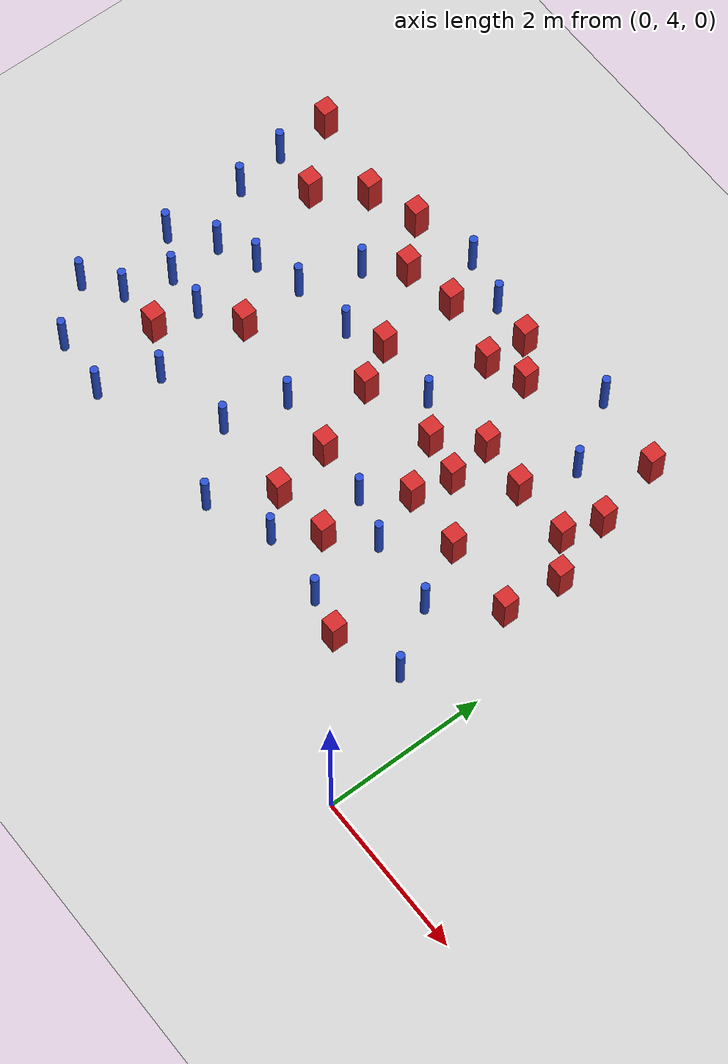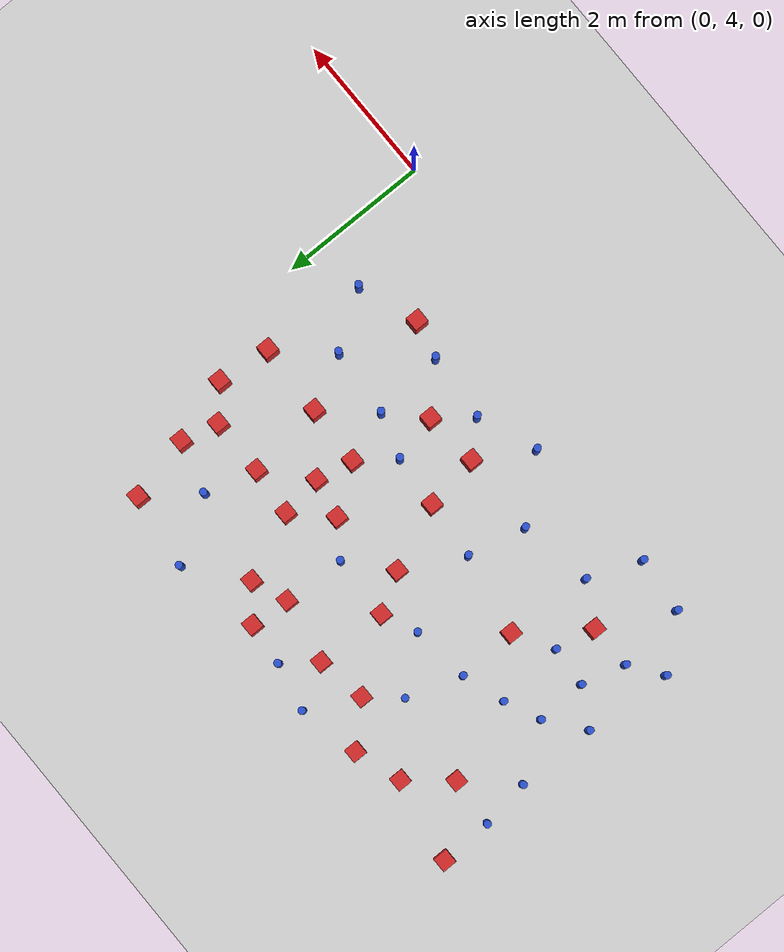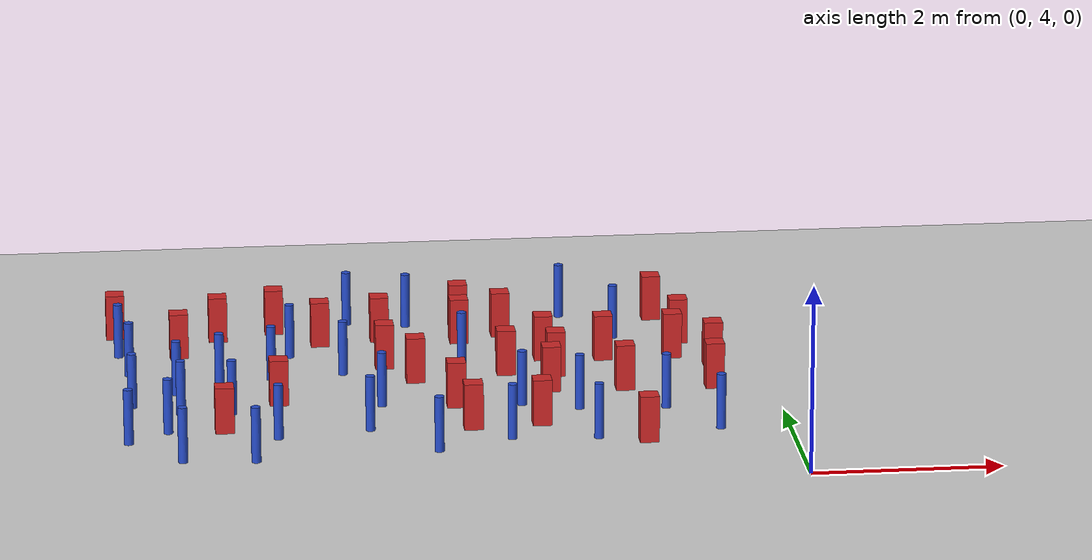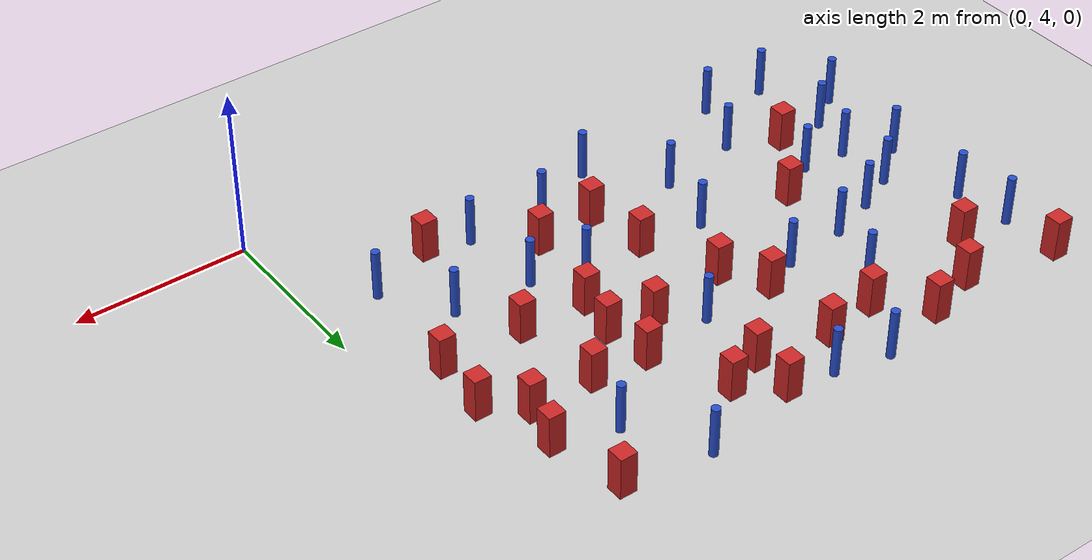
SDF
<sdf version="1.6">
 <world name="default">
  <model name="ground_plane">
   <static>1</static>
   <link name="link">
    <collision name="collision">
     <geometry><plane><normal>0 0 1</normal><size>100 100</size></plane></geometry>
     <surface><friction><ode><mu>100</mu><mu2>50</mu2></ode></friction></surface>
    </collision>
    <visual name="visual">
     <cast_shadows>0</cast_shadows>
     <geometry><plane><normal>0 0 1</normal><size>100 100</size></plane></geometry>
     <material>
      <ambient>1.0 1.0 1.0 1.0</ambient>
      <diffuse>0.8 0.8 0.8 1.0</diffuse>
      <specular>0.01 0.01 0.01 1.000000</specular>
     </material>
    </visual>
   </link>
  </model>
  <model name="square_post_obstacle2">
   <static>true</static>
   <pose>-5.19528177853 9.21006002513 8.22691968438e-08 7.22125133819e-06 -7.54495500217e-07 2.29674213826e-05</pose>
   <link name="link">
    <pose>0 0 0.25 0 -0 0</pose>
    <inertial>
     <mass>100</mass>
     <inertia>
      <ixx>0.166667</ixx>
      <ixy>0</ixy>
      <ixz>0</ixz>
      <iyy>0.166667</iyy>
      <iyz>0</iyz>
      <izz>0.166667</izz>
     </inertia>
    </inertial>
    <collision name="collision"><geometry><box><size>.2 .2 .5</size></box></geometry></collision>
    <visual name="visual">
     <geometry><box><size>.2 .2 .5</size></box></geometry>
     <material>
      <script><name>Gazebo/Red</name><uri>file://media/materials/scripts/gazebo.material</uri></script>
     </material>
    </visual>
   </link>
  </model>
  <model name="square_post_obstacle3">
   <static>true</static>
   <pose>-1.02345209858 9.29119812651 8.22691968438e-08 7.22125133819e-06 -7.54495500217e-07 2.29674213826e-05</pose>
   <link name="link">
    <pose>0 0 0.25 0 -0 0</pose>
    <inertial>
     <mass>100</mass>
     <inertia>
      <ixx>0.166667</ixx>
      <ixy>0</ixy>
      <ixz>0</ixz>
      <iyy>0.166667</iyy>
      <iyz>0</iyz>
      <izz>0.166667</izz>
     </inertia>
    </inertial>
    <collision name="collision"><geometry><box><size>.2 .2 .5</size></box></geometry></collision>
    <visual name="visual">
     <geometry><box><size>.2 .2 .5</size></box></geometry>
     <material>
      <script><name>Gazebo/Red</name><uri>file://media/materials/scripts/gazebo.material</uri></script>
     </material>
    </visual>
   </link>
  </model>
  <model name="pole_obstacle5">
   <static>true</static>
   <pose>-4.5406717764 7.67600084442 2.88873142074e-08 -9.90536690842e-09 4.60219948965e-07 -1.20965994976e-07</pose>
   <link name="link">
    <pose>0 0 0.3 0 -0 0</pose>
    <inertial>
     <mass>1</mass>
     <inertia><ixx>0.145833</ixx><ixy>0</ixy><ixz>0</ixz><iyy>0.145833</iyy><iyz>0</iyz><izz>0.125</izz></inertia>
    </inertial>
    <collision name="collision">
     <geometry><cylinder><radius>0.05</radius><length>.6</length></cylinder></geometry>
    </collision>
    <visual name="visual">
     <geometry><cylinder><radius>0.05</radius><length>.6</length></cylinder></geometry>
     <material>
      <script><name>Gazebo/Blue</name><uri>file://media/materials/scripts/gazebo.material</uri></script>
     </material>
    </visual>
   </link>
  </model>
  <model name="pole_obstacle8">
   <static>true</static>
   <pose>-6.38018953515 5.01108412161 2.88873142074e-08 -9.90536690842e-09 4.60219948965e-07 -1.20965994976e-07</pose>
   <link name="link">
    <pose>0 0 0.3 0 -0 0</pose>
    <inertial>
     <mass>1</mass>
     <inertia><ixx>0.145833</ixx><ixy>0</ixy><ixz>0</ixz><iyy>0.145833</iyy><iyz>0</iyz><izz>0.125</izz></inertia>
    </inertial>
    <collision name="collision">
     <geometry><cylinder><radius>0.05</radius><length>.6</length></cylinder></geometry>
    </collision>
    <visual name="visual">
     <geometry><cylinder><radius>0.05</radius><length>.6</length></cylinder></geometry>
     <material>
      <script><name>Gazebo/Blue</name><uri>file://media/materials/scripts/gazebo.material</uri></script>
     </material>
    </visual>
   </link>
  </model>
  <model name="square_post_obstacle14">
   <static>true</static>
   <pose>-2.37132577431 6.94454927565 8.22691968438e-08 7.2212513382e-06 -7.54495500217e-07 2.29674213826e-05</pose>
   <link name="link">
    <pose>0 0 0.25 0 -0 0</pose>
    <inertial>
     <mass>100</mass>
     <inertia>
      <ixx>0.166667</ixx>
      <ixy>0</ixy>
      <ixz>0</ixz>
      <iyy>0.166667</iyy>
      <iyz>0</iyz>
      <izz>0.166667</izz>
     </inertia>
    </inertial>
    <collision name="collision"><geometry><box><size>.2 .2 .5</size></box></geometry></collision>
    <visual name="visual">
     <geometry><box><size>.2 .2 .5</size></box></geometry>
     <material>
      <script><name>Gazebo/Red</name><uri>file://media/materials/scripts/gazebo.material</uri></script>
     </material>
    </visual>
   </link>
  </model>
  <model name="square_post_obstacle16">
   <static>true</static>
   <pose>-6.93241014558 9.20835231173 8.22691968438e-08 7.22125133819e-06 -7.54495500217e-07 2.29674213826e-05</pose>
   <link name="link">
    <pose>0 0 0.25 0 -0 0</pose>
    <inertial>
     <mass>100</mass>
     <inertia>
      <ixx>0.166667</ixx>
      <ixy>0</ixy>
      <ixz>0</ixz>
      <iyy>0.166667</iyy>
      <iyz>0</iyz>
      <izz>0.166667</izz>
     </inertia>
    </inertial>
    <collision name="collision"><geometry><box><size>.2 .2 .5</size></box></geometry></collision>
    <visual name="visual">
     <geometry><box><size>.2 .2 .5</size></box></geometry>
     <material>
      <script><name>Gazebo/Red</name><uri>file://media/materials/scripts/gazebo.material</uri></script>
     </material>
    </visual>
   </link>
  </model>
  <model name="pole_obstacle9">
   <static>true</static>
   <pose>-3.72507891736 5.07874219042 2.88873142074e-08 -9.90536689859e-09 4.60219948989e-07 -1.20965994961e-07</pose>
   <link name="link">
    <pose>0 0 0.3 0 -0 0</pose>
    <inertial>
     <mass>1</mass>
     <inertia><ixx>0.145833</ixx><ixy>0</ixy><ixz>0</ixz><iyy>0.145833</iyy><iyz>0</iyz><izz>0.125</izz></inertia>
    </inertial>
    <collision name="collision">
     <geometry><cylinder><radius>0.05</radius><length>.6</length></cylinder></geometry>
    </collision>
    <visual name="visual">
     <geometry><cylinder><radius>0.05</radius><length>.6</length></cylinder></geometry>
     <material>
      <script><name>Gazebo/Blue</name><uri>file://media/materials/scripts/gazebo.material</uri></script>
     </material>
    </visual>
   </link>
  </model>
  <model name="square_post_obstacle19">
   <static>true</static>
   <pose>-3.30935946386 5.7919567537 8.22691968438e-08 7.2212513382e-06 -7.54495500217e-07 2.29674213826e-05</pose>
   <link name="link">
    <pose>0 0 0.25 0 -0 0</pose>
    <inertial>
     <mass>100</mass>
     <inertia>
      <ixx>0.166667</ixx>
      <ixy>0</ixy>
      <ixz>0</ixz>
      <iyy>0.166667</iyy>
      <iyz>0</iyz>
      <izz>0.166667</izz>
     </inertia>
    </inertial>
    <collision name="collision"><geometry><box><size>.2 .2 .5</size></box></geometry></collision>
    <visual name="visual">
     <geometry><box><size>.2 .2 .5</size></box></geometry>
     <material>
      <script><name>Gazebo/Red</name><uri>file://media/materials/scripts/gazebo.material</uri></script>
     </material>
    </visual>
   </link>
  </model>
  <model name="pole_obstacle11">
   <static>true</static>
   <pose>-3.24421056813 7.85350295179 2.88873142074e-08 -9.90536689859e-09 4.60219948989e-07 -1.20965994961e-07</pose>
   <link name="link">
    <pose>0 0 0.3 0 -0 0</pose>
    <inertial>
     <mass>1</mass>
     <inertia><ixx>0.145833</ixx><ixy>0</ixy><ixz>0</ixz><iyy>0.145833</iyy><iyz>0</iyz><izz>0.125</izz></inertia>
    </inertial>
    <collision name="collision">
     <geometry><cylinder><radius>0.05</radius><length>.6</length></cylinder></geometry>
    </collision>
    <visual name="visual">
     <geometry><cylinder><radius>0.05</radius><length>.6</length></cylinder></geometry>
     <material>
      <script><name>Gazebo/Blue</name><uri>file://media/materials/scripts/gazebo.material</uri></script>
     </material>
    </visual>
   </link>
  </model>
  <model name="square_post_obstacle27">
   <static>true</static>
   <pose>-5.90386193936 5.9466558869 8.22691968438e-08 7.2212513382e-06 -7.54495500217e-07 2.29674213826e-05</pose>
   <link name="link">
    <pose>0 0 0.25 0 -0 0</pose>
    <inertial>
     <mass>100</mass>
     <inertia>
      <ixx>0.166667</ixx>
      <ixy>0</ixy>
      <ixz>0</ixz>
      <iyy>0.166667</iyy>
      <iyz>0</iyz>
      <izz>0.166667</izz>
     </inertia>
    </inertial>
    <collision name="collision"><geometry><box><size>.2 .2 .5</size></box></geometry></collision>
    <visual name="visual">
     <geometry><box><size>.2 .2 .5</size></box></geometry>
     <material>
      <script><name>Gazebo/Red</name><uri>file://media/materials/scripts/gazebo.material</uri></script>
     </material>
    </visual>
   </link>
  </model>
  <model name="pole_obstacle19">
   <static>true</static>
   <pose>-5.6300147762 4.94023833615 2.88873142074e-08 -9.90536690842e-09 4.60219948965e-07 -1.20965994976e-07</pose>
   <link name="link">
    <pose>0 0 0.3 0 -0 0</pose>
    <inertial>
     <mass>1</mass>
     <inertia><ixx>0.145833</ixx><ixy>0</ixy><ixz>0</ixz><iyy>0.145833</iyy><iyz>0</iyz><izz>0.125</izz></inertia>
    </inertial>
    <collision name="collision">
     <geometry><cylinder><radius>0.05</radius><length>.6</length></cylinder></geometry>
    </collision>
    <visual name="visual">
     <geometry><cylinder><radius>0.05</radius><length>.6</length></cylinder></geometry>
     <material>
      <script><name>Gazebo/Blue</name><uri>file://media/materials/scripts/gazebo.material</uri></script>
     </material>
    </visual>
   </link>
  </model>
  <model name="pole_obstacle21">
   <static>true</static>
   <pose>-0.732135297291 5.49770974981 2.88873142074e-08 -9.90536689661e-09 4.60219948993e-07 -1.20965994957e-07</pose>
   <link name="link">
    <pose>0 0 0.3 0 -0 0</pose>
    <inertial>
     <mass>1</mass>
     <inertia><ixx>0.145833</ixx><ixy>0</ixy><ixz>0</ixz><iyy>0.145833</iyy><iyz>0</iyz><izz>0.125</izz></inertia>
    </inertial>
    <collision name="collision">
     <geometry><cylinder><radius>0.05</radius><length>.6</length></cylinder></geometry>
    </collision>
    <visual name="visual">
     <geometry><cylinder><radius>0.05</radius><length>.6</length></cylinder></geometry>
     <material>
      <script><name>Gazebo/Blue</name><uri>file://media/materials/scripts/gazebo.material</uri></script>
     </material>
    </visual>
   </link>
  </model>
  <model name="pole_obstacle23">
   <static>true</static>
   <pose>-1.22024010586 6.22082861621 2.88873142074e-08 -9.90536689852e-09 4.60219948989e-07 -1.2096599496e-07</pose>
   <link name="link">
    <pose>0 0 0.3 0 -0 0</pose>
    <inertial>
     <mass>1</mass>
     <inertia><ixx>0.145833</ixx><ixy>0</ixy><ixz>0</ixz><iyy>0.145833</iyy><iyz>0</iyz><izz>0.125</izz></inertia>
    </inertial>
    <collision name="collision">
     <geometry><cylinder><radius>0.05</radius><length>.6</length></cylinder></geometry>
    </collision>
    <visual name="visual">
     <geometry><cylinder><radius>0.05</radius><length>.6</length></cylinder></geometry>
     <material>
      <script><name>Gazebo/Blue</name><uri>file://media/materials/scripts/gazebo.material</uri></script>
     </material>
    </visual>
   </link>
  </model>
  <model name="pole_obstacle36">
   <static>true</static>
   <pose>-5.7958700446 6.48162604682 2.88873142074e-08 -9.90536690842e-09 4.60219948965e-07 -1.20965994976e-07</pose>
   <link name="link">
    <pose>0 0 0.3 0 -0 0</pose>
    <inertial>
     <mass>1</mass>
     <inertia><ixx>0.145833</ixx><ixy>0</ixy><ixz>0</ixz><iyy>0.145833</iyy><iyz>0</iyz><izz>0.125</izz></inertia>
    </inertial>
    <collision name="collision">
     <geometry><cylinder><radius>0.05</radius><length>.6</length></cylinder></geometry>
    </collision>
    <visual name="visual">
     <geometry><cylinder><radius>0.05</radius><length>.6</length></cylinder></geometry>
     <material>
      <script><name>Gazebo/Blue</name><uri>file://media/materials/scripts/gazebo.material</uri></script>
     </material>
    </visual>
   </link>
  </model>
  <model name="square_post_obstacle37">
   <static>true</static>
   <pose>-2.7369388091 8.86184425948 8.22691968438e-08 7.22125133819e-06 -7.54495500217e-07 2.29674213826e-05</pose>
   <link name="link">
    <pose>0 0 0.25 0 -0 0</pose>
    <inertial>
     <mass>100</mass>
     <inertia>
      <ixx>0.166667</ixx>
      <ixy>0</ixy>
      <ixz>0</ixz>
      <iyy>0.166667</iyy>
      <iyz>0</iyz>
      <izz>0.166667</izz>
     </inertia>
    </inertial>
    <collision name="collision"><geometry><box><size>.2 .2 .5</size></box></geometry></collision>
    <visual name="visual">
     <geometry><box><size>.2 .2 .5</size></box></geometry>
     <material>
      <script><name>Gazebo/Red</name><uri>file://media/materials/scripts/gazebo.material</uri></script>
     </material>
    </visual>
   </link>
  </model>
  <model name="square_post_obstacle40">
   <static>true</static>
   <pose>-3.42338752675 6.52288904968 8.22691968438e-08 7.2212513382e-06 -7.54495500217e-07 2.29674213826e-05</pose>
   <link name="link">
    <pose>0 0 0.25 0 -0 0</pose>
    <inertial>
     <mass>100</mass>
     <inertia>
      <ixx>0.166667</ixx>
      <ixy>0</ixy>
      <ixz>0</ixz>
      <iyy>0.166667</iyy>
      <iyz>0</iyz>
      <izz>0.166667</izz>
     </inertia>
    </inertial>
    <collision name="collision"><geometry><box><size>.2 .2 .5</size></box></geometry></collision>
    <visual name="visual">
     <geometry><box><size>.2 .2 .5</size></box></geometry>
     <material>
      <script><name>Gazebo/Red</name><uri>file://media/materials/scripts/gazebo.material</uri></script>
     </material>
    </visual>
   </link>
  </model>
  <model name="pole_obstacle44">
   <static>true</static>
   <pose>-2.72752883314 6.47119800736 2.88873142074e-08 -9.90536689859e-09 4.60219948989e-07 -1.20965994961e-07</pose>
   <link name="link">
    <pose>0 0 0.3 0 -0 0</pose>
    <inertial>
     <mass>1</mass>
     <inertia><ixx>0.145833</ixx><ixy>0</ixy><ixz>0</ixz><iyy>0.145833</iyy><iyz>0</iyz><izz>0.125</izz></inertia>
    </inertial>
    <collision name="collision">
     <geometry><cylinder><radius>0.05</radius><length>.6</length></cylinder></geometry>
    </collision>
    <visual name="visual">
     <geometry><cylinder><radius>0.05</radius><length>.6</length></cylinder></geometry>
     <material>
      <script><name>Gazebo/Blue</name><uri>file://media/materials/scripts/gazebo.material</uri></script>
     </material>
    </visual>
   </link>
  </model>
  <model name="pole_obstacle45">
   <static>true</static>
   <pose>-6.83371068007 6.80392389619 2.88873142074e-08 -9.90536690842e-09 4.60219948965e-07 -1.20965994976e-07</pose>
   <link name="link">
    <pose>0 0 0.3 0 -0 0</pose>
    <inertial>
     <mass>1</mass>
     <inertia><ixx>0.145833</ixx><ixy>0</ixy><ixz>0</ixz><iyy>0.145833</iyy><iyz>0</iyz><izz>0.125</izz></inertia>
    </inertial>
    <collision name="collision">
     <geometry><cylinder><radius>0.05</radius><length>.6</length></cylinder></geometry>
    </collision>
    <visual name="visual">
     <geometry><cylinder><radius>0.05</radius><length>.6</length></cylinder></geometry>
     <material>
      <script><name>Gazebo/Blue</name><uri>file://media/materials/scripts/gazebo.material</uri></script>
     </material>
    </visual>
   </link>
  </model>
  <model name="pole_obstacle58">
   <static>true</static>
   <pose>-3.7408522419 9.26052822694 2.88873142074e-08 -9.9053668994e-09 4.60219948987e-07 -1.20965994963e-07</pose>
   <link name="link">
    <pose>0 0 0.3 0 -0 0</pose>
    <inertial>
     <mass>1</mass>
     <inertia><ixx>0.145833</ixx><ixy>0</ixy><ixz>0</ixz><iyy>0.145833</iyy><iyz>0</iyz><izz>0.125</izz></inertia>
    </inertial>
    <collision name="collision">
     <geometry><cylinder><radius>0.05</radius><length>.6</length></cylinder></geometry>
    </collision>
    <visual name="visual">
     <geometry><cylinder><radius>0.05</radius><length>.6</length></cylinder></geometry>
     <material>
      <script><name>Gazebo/Blue</name><uri>file://media/materials/scripts/gazebo.material</uri></script>
     </material>
    </visual>
   </link>
  </model>
  <model name="square_post_obstacle63">
   <static>true</static>
   <pose>-5.28655363855 6.78284369731 8.22691968438e-08 7.2212513382e-06 -7.54495500217e-07 2.29674213826e-05</pose>
   <link name="link">
    <pose>0 0 0.25 0 -0 0</pose>
    <inertial>
     <mass>100</mass>
     <inertia>
      <ixx>0.166667</ixx>
      <ixy>0</ixy>
      <ixz>0</ixz>
      <iyy>0.166667</iyy>
      <iyz>0</iyz>
      <izz>0.166667</izz>
     </inertia>
    </inertial>
    <collision name="collision"><geometry><box><size>.2 .2 .5</size></box></geometry></collision>
    <visual name="visual">
     <geometry><box><size>.2 .2 .5</size></box></geometry>
     <material>
      <script><name>Gazebo/Red</name><uri>file://media/materials/scripts/gazebo.material</uri></script>
     </material>
    </visual>
   </link>
  </model>
  <model name="square_post_obstacle68">
   <static>true</static>
   <pose>-4.7209632068 8.72180130161 8.22691968438e-08 7.22125133819e-06 -7.54495500217e-07 2.29674213826e-05</pose>
   <link name="link">
    <pose>0 0 0.25 0 -0 0</pose>
    <inertial>
     <mass>100</mass>
     <inertia>
      <ixx>0.166667</ixx>
      <ixy>0</ixy>
      <ixz>0</ixz>
      <iyy>0.166667</iyy>
      <iyz>0</iyz>
      <izz>0.166667</izz>
     </inertia>
    </inertial>
    <collision name="collision"><geometry><box><size>.2 .2 .5</size></box></geometry></collision>
    <visual name="visual">
     <geometry><box><size>.2 .2 .5</size></box></geometry>
     <material>
      <script><name>Gazebo/Red</name><uri>file://media/materials/scripts/gazebo.material</uri></script>
     </material>
    </visual>
   </link>
  </model>
  <model name="pole_obstacle68">
   <static>true</static>
   <pose>-4.2051943512 6.5836357033 2.88873142074e-08 -9.90536690842e-09 4.60219948965e-07 -1.20965994976e-07</pose>
   <link name="link">
    <pose>0 0 0.3 0 -0 0</pose>
    <inertial>
     <mass>1</mass>
     <inertia><ixx>0.145833</ixx><ixy>0</ixy><ixz>0</ixz><iyy>0.145833</iyy><iyz>0</iyz><izz>0.125</izz></inertia>
    </inertial>
    <collision name="collision">
     <geometry><cylinder><radius>0.05</radius><length>.6</length></cylinder></geometry>
    </collision>
    <visual name="visual">
     <geometry><cylinder><radius>0.05</radius><length>.6</length></cylinder></geometry>
     <material>
      <script><name>Gazebo/Blue</name><uri>file://media/materials/scripts/gazebo.material</uri></script>
     </material>
    </visual>
   </link>
  </model>
  <model name="pole_obstacle72">
   <static>true</static>
   <pose>-5.88175075173 7.39533761183 2.88873142074e-08 -9.90536690842e-09 4.60219948965e-07 -1.20965994976e-07</pose>
   <link name="link">
    <pose>0 0 0.3 0 -0 0</pose>
    <inertial>
     <mass>1</mass>
     <inertia><ixx>0.145833</ixx><ixy>0</ixy><ixz>0</ixz><iyy>0.145833</iyy><iyz>0</iyz><izz>0.125</izz></inertia>
    </inertial>
    <collision name="collision">
     <geometry><cylinder><radius>0.05</radius><length>.6</length></cylinder></geometry>
    </collision>
    <visual name="visual">
     <geometry><cylinder><radius>0.05</radius><length>.6</length></cylinder></geometry>
     <material>
      <script><name>Gazebo/Blue</name><uri>file://media/materials/scripts/gazebo.material</uri></script>
     </material>
    </visual>
   </link>
  </model>
  <model name="pole_obstacle79">
   <static>true</static>
   <pose>-2.1336242819 6.28622831629 2.88873142074e-08 -9.90536689859e-09 4.60219948989e-07 -1.20965994961e-07</pose>
   <link name="link">
    <pose>0 0 0.3 0 -0 0</pose>
    <inertial>
     <mass>1</mass>
     <inertia><ixx>0.145833</ixx><ixy>0</ixy><ixz>0</ixz><iyy>0.145833</iyy><iyz>0</iyz><izz>0.125</izz></inertia>
    </inertial>
    <collision name="collision">
     <geometry><cylinder><radius>0.05</radius><length>.6</length></cylinder></geometry>
    </collision>
    <visual name="visual">
     <geometry><cylinder><radius>0.05</radius><length>.6</length></cylinder></geometry>
     <material>
      <script><name>Gazebo/Blue</name><uri>file://media/materials/scripts/gazebo.material</uri></script>
     </material>
    </visual>
   </link>
  </model>
  <model name="square_post_obstacle78">
   <static>true</static>
   <pose>-1.52919290178 5.20917606949 8.22691968438e-08 7.2212513382e-06 -7.54495500217e-07 2.29674213826e-05</pose>
   <link name="link">
    <pose>0 0 0.25 0 -0 0</pose>
    <inertial>
     <mass>100</mass>
     <inertia>
      <ixx>0.166667</ixx>
      <ixy>0</ixy>
      <ixz>0</ixz>
      <iyy>0.166667</iyy>
      <iyz>0</iyz>
      <izz>0.166667</izz>
     </inertia>
    </inertial>
    <collision name="collision"><geometry><box><size>.2 .2 .5</size></box></geometry></collision>
    <visual name="visual">
     <geometry><box><size>.2 .2 .5</size></box></geometry>
     <material>
      <script><name>Gazebo/Red</name><uri>file://media/materials/scripts/gazebo.material</uri></script>
     </material>
    </visual>
   </link>
  </model>
  <model name="pole_obstacle84">
   <static>true</static>
   <pose>-6.91480890273 5.63385829613 2.88873142074e-08 -9.90536690842e-09 4.60219948965e-07 -1.20965994976e-07</pose>
   <link name="link">
    <pose>0 0 0.3 0 -0 0</pose>
    <inertial>
     <mass>1</mass>
     <inertia><ixx>0.145833</ixx><ixy>0</ixy><ixz>0</ixz><iyy>0.145833</iyy><iyz>0</iyz><izz>0.125</izz></inertia>
    </inertial>
    <collision name="collision">
     <geometry><cylinder><radius>0.05</radius><length>.6</length></cylinder></geometry>
    </collision>
    <visual name="visual">
     <geometry><cylinder><radius>0.05</radius><length>.6</length></cylinder></geometry>
     <material>
      <script><name>Gazebo/Blue</name><uri>file://media/materials/scripts/gazebo.material</uri></script>
     </material>
    </visual>
   </link>
  </model>
  <model name="square_post_obstacle86">
   <static>true</static>
   <pose>-2.35099746278 7.99806680466 8.22691968438e-08 7.22125133819e-06 -7.54495500217e-07 2.29674213826e-05</pose>
   <link name="link">
    <pose>0 0 0.25 0 -0 0</pose>
    <inertial>
     <mass>100</mass>
     <inertia>
      <ixx>0.166667</ixx>
      <ixy>0</ixy>
      <ixz>0</ixz>
      <iyy>0.166667</iyy>
      <iyz>0</iyz>
      <izz>0.166667</izz>
     </inertia>
    </inertial>
    <collision name="collision"><geometry><box><size>.2 .2 .5</size></box></geometry></collision>
    <visual name="visual">
     <geometry><box><size>.2 .2 .5</size></box></geometry>
     <material>
      <script><name>Gazebo/Red</name><uri>file://media/materials/scripts/gazebo.material</uri></script>
     </material>
    </visual>
   </link>
  </model>
  <model name="pole_obstacle106">
   <static>true</static>
   <pose>-5.31754936048 7.58290947847 2.88873142074e-08 -9.90536690842e-09 4.60219948965e-07 -1.20965994976e-07</pose>
   <link name="link">
    <pose>0 0 0.3 0 -0 0</pose>
    <inertial>
     <mass>1</mass>
     <inertia><ixx>0.145833</ixx><ixy>0</ixy><ixz>0</ixz><iyy>0.145833</iyy><iyz>0</iyz><izz>0.125</izz></inertia>
    </inertial>
    <collision name="collision">
     <geometry><cylinder><radius>0.05</radius><length>.6</length></cylinder></geometry>
    </collision>
    <visual name="visual">
     <geometry><cylinder><radius>0.05</radius><length>.6</length></cylinder></geometry>
     <material>
      <script><name>Gazebo/Blue</name><uri>file://media/materials/scripts/gazebo.material</uri></script>
     </material>
    </visual>
   </link>
  </model>
  <model name="square_post_obstacle95">
   <static>true</static>
   <pose>-2.58148252205 5.85597581357 8.22691968438e-08 7.2212513382e-06 -7.54495500217e-07 2.29674213826e-05</pose>
   <link name="link">
    <pose>0 0 0.25 0 -0 0</pose>
    <inertial>
     <mass>100</mass>
     <inertia>
      <ixx>0.166667</ixx>
      <ixy>0</ixy>
      <ixz>0</ixz>
      <iyy>0.166667</iyy>
      <iyz>0</iyz>
      <izz>0.166667</izz>
     </inertia>
    </inertial>
    <collision name="collision"><geometry><box><size>.2 .2 .5</size></box></geometry></collision>
    <visual name="visual">
     <geometry><box><size>.2 .2 .5</size></box></geometry>
     <material>
      <script><name>Gazebo/Red</name><uri>file://media/materials/scripts/gazebo.material</uri></script>
     </material>
    </visual>
   </link>
  </model>
  <model name="square_post_obstacle96">
   <static>true</static>
   <pose>-0.825289594683 8.43469522733 8.22691968438e-08 7.22125133819e-06 -7.54495500217e-07 2.29674213826e-05</pose>
   <link name="link">
    <pose>0 0 0.25 0 -0 0</pose>
    <inertial>
     <mass>100</mass>
     <inertia>
      <ixx>0.166667</ixx>
      <ixy>0</ixy>
      <ixz>0</ixz>
      <iyy>0.166667</iyy>
      <iyz>0</iyz>
      <izz>0.166667</izz>
     </inertia>
    </inertial>
    <collision name="collision"><geometry><box><size>.2 .2 .5</size></box></geometry></collision>
    <visual name="visual">
     <geometry><box><size>.2 .2 .5</size></box></geometry>
     <material>
      <script><name>Gazebo/Red</name><uri>file://media/materials/scripts/gazebo.material</uri></script>
     </material>
    </visual>
   </link>
  </model>
  <model name="pole_obstacle117">
   <static>true</static>
   <pose>-4.38590825838 5.81357657933 2.88873142074e-08 -9.90536690842e-09 4.60219948965e-07 -1.20965994976e-07</pose>
   <link name="link">
    <pose>0 0 0.3 0 -0 0</pose>
    <inertial>
     <mass>1</mass>
     <inertia><ixx>0.145833</ixx><ixy>0</ixy><ixz>0</ixz><iyy>0.145833</iyy><iyz>0</iyz><izz>0.125</izz></inertia>
    </inertial>
    <collision name="collision">
     <geometry><cylinder><radius>0.05</radius><length>.6</length></cylinder></geometry>
    </collision>
    <visual name="visual">
     <geometry><cylinder><radius>0.05</radius><length>.6</length></cylinder></geometry>
     <material>
      <script><name>Gazebo/Blue</name><uri>file://media/materials/scripts/gazebo.material</uri></script>
     </material>
    </visual>
   </link>
  </model>
  <model name="square_post_obstacle104">
   <static>true</static>
   <pose>-6.26798650085 8.47077380025 8.22691968438e-08 7.22125133819e-06 -7.54495500217e-07 2.29674213826e-05</pose>
   <link name="link">
    <pose>0 0 0.25 0 -0 0</pose>
    <inertial>
     <mass>100</mass>
     <inertia>
      <ixx>0.166667</ixx>
      <ixy>0</ixy>
      <ixz>0</ixz>
      <iyy>0.166667</iyy>
      <iyz>0</iyz>
      <izz>0.166667</izz>
     </inertia>
    </inertial>
    <collision name="collision"><geometry><box><size>.2 .2 .5</size></box></geometry></collision>
    <visual name="visual">
     <geometry><box><size>.2 .2 .5</size></box></geometry>
     <material>
      <script><name>Gazebo/Red</name><uri>file://media/materials/scripts/gazebo.material</uri></script>
     </material>
    </visual>
   </link>
  </model>
  <model name="square_post_obstacle111">
   <static>true</static>
   <pose>-1.70488436957 7.94221750859 8.22691968438e-08 7.22125133819e-06 -7.54495500217e-07 2.29674213826e-05</pose>
   <link name="link">
    <pose>0 0 0.25 0 -0 0</pose>
    <inertial>
     <mass>100</mass>
     <inertia>
      <ixx>0.166667</ixx>
      <ixy>0</ixy>
      <ixz>0</ixz>
      <iyy>0.166667</iyy>
      <iyz>0</iyz>
      <izz>0.166667</izz>
     </inertia>
    </inertial>
    <collision name="collision"><geometry><box><size>.2 .2 .5</size></box></geometry></collision>
    <visual name="visual">
     <geometry><box><size>.2 .2 .5</size></box></geometry>
     <material>
      <script><name>Gazebo/Red</name><uri>file://media/materials/scripts/gazebo.material</uri></script>
     </material>
    </visual>
   </link>
  </model>
  <model name="square_post_obstacle112">
   <static>true</static>
   <pose>-1.58198399631 6.90880521087 8.22691968438e-08 7.2212513382e-06 -7.54495500217e-07 2.29674213826e-05</pose>
   <link name="link">
    <pose>0 0 0.25 0 -0 0</pose>
    <inertial>
     <mass>100</mass>
     <inertia>
      <ixx>0.166667</ixx>
      <ixy>0</ixy>
      <ixz>0</ixz>
      <iyy>0.166667</iyy>
      <iyz>0</iyz>
      <izz>0.166667</izz>
     </inertia>
    </inertial>
    <collision name="collision"><geometry><box><size>.2 .2 .5</size></box></geometry></collision>
    <visual name="visual">
     <geometry><box><size>.2 .2 .5</size></box></geometry>
     <material>
      <script><name>Gazebo/Red</name><uri>file://media/materials/scripts/gazebo.material</uri></script>
     </material>
    </visual>
   </link>
  </model>
  <model name="square_post_obstacle115">
   <static>true</static>
   <pose>-4.08116462111 7.88175160922 8.22691968438e-08 7.2212513382e-06 -7.54495500217e-07 2.29674213826e-05</pose>
   <link name="link">
    <pose>0 0 0.25 0 -0 0</pose>
    <inertial>
     <mass>100</mass>
     <inertia>
      <ixx>0.166667</ixx>
      <ixy>0</ixy>
      <ixz>0</ixz>
      <iyy>0.166667</iyy>
      <iyz>0</iyz>
      <izz>0.166667</izz>
     </inertia>
    </inertial>
    <collision name="collision"><geometry><box><size>.2 .2 .5</size></box></geometry></collision>
    <visual name="visual">
     <geometry><box><size>.2 .2 .5</size></box></geometry>
     <material>
      <script><name>Gazebo/Red</name><uri>file://media/materials/scripts/gazebo.material</uri></script>
     </material>
    </visual>
   </link>
  </model>
  <model name="pole_obstacle139">
   <static>true</static>
   <pose>-6.91825251002 8.51646473477 2.88873142074e-08 -9.9053668967e-09 4.60219948993e-07 -1.20965994957e-07</pose>
   <link name="link">
    <pose>0 0 0.3 0 -0 0</pose>
    <inertial>
     <mass>1</mass>
     <inertia><ixx>0.145833</ixx><ixy>0</ixy><ixz>0</ixz><iyy>0.145833</iyy><iyz>0</iyz><izz>0.125</izz></inertia>
    </inertial>
    <collision name="collision">
     <geometry><cylinder><radius>0.05</radius><length>.6</length></cylinder></geometry>
    </collision>
    <visual name="visual">
     <geometry><cylinder><radius>0.05</radius><length>.6</length></cylinder></geometry>
     <material>
      <script><name>Gazebo/Blue</name><uri>file://media/materials/scripts/gazebo.material</uri></script>
     </material>
    </visual>
   </link>
  </model>
  <model name="pole_obstacle142">
   <static>true</static>
   <pose>-6.82713700627 7.86596760382 2.88873142074e-08 -9.90536690842e-09 4.60219948965e-07 -1.20965994976e-07</pose>
   <link name="link">
    <pose>0 0 0.3 0 -0 0</pose>
    <inertial>
     <mass>1</mass>
     <inertia><ixx>0.145833</ixx><ixy>0</ixy><ixz>0</ixz><iyy>0.145833</iyy><iyz>0</iyz><izz>0.125</izz></inertia>
    </inertial>
    <collision name="collision">
     <geometry><cylinder><radius>0.05</radius><length>.6</length></cylinder></geometry>
    </collision>
    <visual name="visual">
     <geometry><cylinder><radius>0.05</radius><length>.6</length></cylinder></geometry>
     <material>
      <script><name>Gazebo/Blue</name><uri>file://media/materials/scripts/gazebo.material</uri></script>
     </material>
    </visual>
   </link>
  </model>
  <model name="square_post_obstacle133">
   <static>true</static>
   <pose>-2.27127700756 7.44009682094 8.22691968438e-08 7.2212513382e-06 -7.54495500217e-07 2.29674213826e-05</pose>
   <link name="link">
    <pose>0 0 0.25 0 -0 0</pose>
    <inertial>
     <mass>100</mass>
     <inertia>
      <ixx>0.166667</ixx>
      <ixy>0</ixy>
      <ixz>0</ixz>
      <iyy>0.166667</iyy>
      <iyz>0</iyz>
      <izz>0.166667</izz>
     </inertia>
    </inertial>
    <collision name="collision"><geometry><box><size>.2 .2 .5</size></box></geometry></collision>
    <visual name="visual">
     <geometry><box><size>.2 .2 .5</size></box></geometry>
     <material>
      <script><name>Gazebo/Red</name><uri>file://media/materials/scripts/gazebo.material</uri></script>
     </material>
    </visual>
   </link>
  </model>
  <model name="pole_obstacle144">
   <static>true</static>
   <pose>-2.93477809181 5.39464028317 2.88873142074e-08 -9.90536689859e-09 4.60219948989e-07 -1.20965994961e-07</pose>
   <link name="link">
    <pose>0 0 0.3 0 -0 0</pose>
    <inertial>
     <mass>1</mass>
     <inertia><ixx>0.145833</ixx><ixy>0</ixy><ixz>0</ixz><iyy>0.145833</iyy><iyz>0</iyz><izz>0.125</izz></inertia>
    </inertial>
    <collision name="collision">
     <geometry><cylinder><radius>0.05</radius><length>.6</length></cylinder></geometry>
    </collision>
    <visual name="visual">
     <geometry><cylinder><radius>0.05</radius><length>.6</length></cylinder></geometry>
     <material>
      <script><name>Gazebo/Blue</name><uri>file://media/materials/scripts/gazebo.material</uri></script>
     </material>
    </visual>
   </link>
  </model>
  <model name="pole_obstacle147">
   <static>true</static>
   <pose>-2.02580657513 9.43499275493 2.88873142074e-08 -9.9053669068e-09 4.60219948969e-07 -1.20965994974e-07</pose>
   <link name="link">
    <pose>0 0 0.3 0 -0 0</pose>
    <inertial>
     <mass>1</mass>
     <inertia><ixx>0.145833</ixx><ixy>0</ixy><ixz>0</ixz><iyy>0.145833</iyy><iyz>0</iyz><izz>0.125</izz></inertia>
    </inertial>
    <collision name="collision">
     <geometry><cylinder><radius>0.05</radius><length>.6</length></cylinder></geometry>
    </collision>
    <visual name="visual">
     <geometry><cylinder><radius>0.05</radius><length>.6</length></cylinder></geometry>
     <material>
      <script><name>Gazebo/Blue</name><uri>file://media/materials/scripts/gazebo.material</uri></script>
     </material>
    </visual>
   </link>
  </model>
  <model name="square_post_obstacle142">
   <static>true</static>
   <pose>-4.06514408979 8.83404447339 8.22691968438e-08 7.22125133819e-06 -7.54495500217e-07 2.29674213826e-05</pose>
   <link name="link">
    <pose>0 0 0.25 0 -0 0</pose>
    <inertial>
     <mass>100</mass>
     <inertia>
      <ixx>0.166667</ixx>
      <ixy>0</ixy>
      <ixz>0</ixz>
      <iyy>0.166667</iyy>
      <iyz>0</iyz>
      <izz>0.166667</izz>
     </inertia>
    </inertial>
    <collision name="collision"><geometry><box><size>.2 .2 .5</size></box></geometry></collision>
    <visual name="visual">
     <geometry><box><size>.2 .2 .5</size></box></geometry>
     <material>
      <script><name>Gazebo/Red</name><uri>file://media/materials/scripts/gazebo.material</uri></script>
     </material>
    </visual>
   </link>
  </model>
  <model name="square_post_obstacle143">
   <static>true</static>
   <pose>-3.17020085904 9.20380786535 8.22691968438e-08 7.22125133819e-06 -7.54495500217e-07 2.29674213826e-05</pose>
   <link name="link">
    <pose>0 0 0.25 0 -0 0</pose>
    <inertial>
     <mass>100</mass>
     <inertia>
      <ixx>0.166667</ixx>
      <ixy>0</ixy>
      <ixz>0</ixz>
      <iyy>0.166667</iyy>
      <iyz>0</iyz>
      <izz>0.166667</izz>
     </inertia>
    </inertial>
    <collision name="collision"><geometry><box><size>.2 .2 .5</size></box></geometry></collision>
    <visual name="visual">
     <geometry><box><size>.2 .2 .5</size></box></geometry>
     <material>
      <script><name>Gazebo/Red</name><uri>file://media/materials/scripts/gazebo.material</uri></script>
     </material>
    </visual>
   </link>
  </model>
  <model name="square_post_obstacle145">
   <static>true</static>
   <pose>-5.81988463423 9.00413757911 8.22691968438e-08 7.22125133819e-06 -7.54495500217e-07 2.29674213826e-05</pose>
   <link name="link">
    <pose>0 0 0.25 0 -0 0</pose>
    <inertial>
     <mass>100</mass>
     <inertia>
      <ixx>0.166667</ixx>
      <ixy>0</ixy>
      <ixz>0</ixz>
      <iyy>0.166667</iyy>
      <iyz>0</iyz>
      <izz>0.166667</izz>
     </inertia>
    </inertial>
    <collision name="collision"><geometry><box><size>.2 .2 .5</size></box></geometry></collision>
    <visual name="visual">
     <geometry><box><size>.2 .2 .5</size></box></geometry>
     <material>
      <script><name>Gazebo/Red</name><uri>file://media/materials/scripts/gazebo.material</uri></script>
     </material>
    </visual>
   </link>
  </model>
  <model name="square_post_obstacle147">
   <static>true</static>
   <pose>-3.7863292473 7.38517154749 8.22691968438e-08 7.2212513382e-06 -7.54495500217e-07 2.29674213826e-05</pose>
   <link name="link">
    <pose>0 0 0.25 0 -0 0</pose>
    <inertial>
     <mass>100</mass>
     <inertia>
      <ixx>0.166667</ixx>
      <ixy>0</ixy>
      <ixz>0</ixz>
      <iyy>0.166667</iyy>
      <iyz>0</iyz>
      <izz>0.166667</izz>
     </inertia>
    </inertial>
    <collision name="collision"><geometry><box><size>.2 .2 .5</size></box></geometry></collision>
    <visual name="visual">
     <geometry><box><size>.2 .2 .5</size></box></geometry>
     <material>
      <script><name>Gazebo/Red</name><uri>file://media/materials/scripts/gazebo.material</uri></script>
     </material>
    </visual>
   </link>
  </model>
  <model name="pole_obstacle157">
   <static>true</static>
   <pose>-2.03587648705 5.3263104375 2.88873142074e-08 -9.90536689575e-09 4.60219948995e-07 -1.20965994956e-07</pose>
   <link name="link">
    <pose>0 0 0.3 0 -0 0</pose>
    <inertial>
     <mass>1</mass>
     <inertia><ixx>0.145833</ixx><ixy>0</ixy><ixz>0</ixz><iyy>0.145833</iyy><iyz>0</iyz><izz>0.125</izz></inertia>
    </inertial>
    <collision name="collision">
     <geometry><cylinder><radius>0.05</radius><length>.6</length></cylinder></geometry>
    </collision>
    <visual name="visual">
     <geometry><cylinder><radius>0.05</radius><length>.6</length></cylinder></geometry>
     <material>
      <script><name>Gazebo/Blue</name><uri>file://media/materials/scripts/gazebo.material</uri></script>
     </material>
    </visual>
   </link>
  </model>
  <model name="square_post_obstacle155">
   <static>true</static>
   <pose>-3.20604972759 8.67890116992 8.22691968438e-08 7.22125133819e-06 -7.54495500217e-07 2.29674213826e-05</pose>
   <link name="link">
    <pose>0 0 0.25 0 -0 0</pose>
    <inertial>
     <mass>100</mass>
     <inertia>
      <ixx>0.166667</ixx>
      <ixy>0</ixy>
      <ixz>0</ixz>
      <iyy>0.166667</iyy>
      <iyz>0</iyz>
      <izz>0.166667</izz>
     </inertia>
    </inertial>
    <collision name="collision"><geometry><box><size>.2 .2 .5</size></box></geometry></collision>
    <visual name="visual">
     <geometry><box><size>.2 .2 .5</size></box></geometry>
     <material>
      <script><name>Gazebo/Red</name><uri>file://media/materials/scripts/gazebo.material</uri></script>
     </material>
    </visual>
   </link>
  </model>
  <model name="pole_obstacle176">
   <static>true</static>
   <pose>-1.51457607376 8.62945536861 2.88873142074e-08 -9.90536690474e-09 4.60219948974e-07 -1.2096599497e-07</pose>
   <link name="link">
    <pose>0 0 0.3 0 -0 0</pose>
    <inertial>
     <mass>1</mass>
     <inertia><ixx>0.145833</ixx><ixy>0</ixy><ixz>0</ixz><iyy>0.145833</iyy><iyz>0</iyz><izz>0.125</izz></inertia>
    </inertial>
    <collision name="collision">
     <geometry><cylinder><radius>0.05</radius><length>.6</length></cylinder></geometry>
    </collision>
    <visual name="visual">
     <geometry><cylinder><radius>0.05</radius><length>.6</length></cylinder></geometry>
     <material>
      <script><name>Gazebo/Blue</name><uri>file://media/materials/scripts/gazebo.material</uri></script>
     </material>
    </visual>
   </link>
  </model>
  <model name="square_post_obstacle173">
   <static>true</static>
   <pose>-2.79863853543 7.54087500224 8.22691968438e-08 7.2212513382e-06 -7.54495500217e-07 2.29674213826e-05</pose>
   <link name="link">
    <pose>0 0 0.25 0 -0 0</pose>
    <inertial>
     <mass>100</mass>
     <inertia>
      <ixx>0.166667</ixx>
      <ixy>0</ixy>
      <ixz>0</ixz>
      <iyy>0.166667</iyy>
      <iyz>0</iyz>
      <izz>0.166667</izz>
     </inertia>
    </inertial>
    <collision name="collision"><geometry><box><size>.2 .2 .5</size></box></geometry></collision>
    <visual name="visual">
     <geometry><box><size>.2 .2 .5</size></box></geometry>
     <material>
      <script><name>Gazebo/Red</name><uri>file://media/materials/scripts/gazebo.material</uri></script>
     </material>
    </visual>
   </link>
  </model>
  <model name="square_post_obstacle174">
   <static>true</static>
   <pose>-0.623939114257 6.87649019842 8.22691968438e-08 7.2212513382e-06 -7.54495500217e-07 2.29674213826e-05</pose>
   <link name="link">
    <pose>0 0 0.25 0 -0 0</pose>
    <inertial>
     <mass>100</mass>
     <inertia>
      <ixx>0.166667</ixx>
      <ixy>0</ixy>
      <ixz>0</ixz>
      <iyy>0.166667</iyy>
      <iyz>0</iyz>
      <izz>0.166667</izz>
     </inertia>
    </inertial>
    <collision name="collision"><geometry><box><size>.2 .2 .5</size></box></geometry></collision>
    <visual name="visual">
     <geometry><box><size>.2 .2 .5</size></box></geometry>
     <material>
      <script><name>Gazebo/Red</name><uri>file://media/materials/scripts/gazebo.material</uri></script>
     </material>
    </visual>
   </link>
  </model>
  <model name="pole_obstacle194">
   <static>true</static>
   <pose>-6.35039035736 7.18096941832 2.88873142074e-08 -9.90536690842e-09 4.60219948965e-07 -1.20965994976e-07</pose>
   <link name="link">
    <pose>0 0 0.3 0 -0 0</pose>
    <inertial>
     <mass>1</mass>
     <inertia><ixx>0.145833</ixx><ixy>0</ixy><ixz>0</ixz><iyy>0.145833</iyy><iyz>0</iyz><izz>0.125</izz></inertia>
    </inertial>
    <collision name="collision">
     <geometry><cylinder><radius>0.05</radius><length>.6</length></cylinder></geometry>
    </collision>
    <visual name="visual">
     <geometry><cylinder><radius>0.05</radius><length>.6</length></cylinder></geometry>
     <material>
      <script><name>Gazebo/Blue</name><uri>file://media/materials/scripts/gazebo.material</uri></script>
     </material>
    </visual>
   </link>
  </model>
  <model name="pole_obstacle197">
   <static>true</static>
   <pose>-5.35723916258 5.63921107145 2.88873142074e-08 -9.90536690842e-09 4.60219948965e-07 -1.20965994976e-07</pose>
   <link name="link">
    <pose>0 0 0.3 0 -0 0</pose>
    <inertial>
     <mass>1</mass>
     <inertia><ixx>0.145833</ixx><ixy>0</ixy><ixz>0</ixz><iyy>0.145833</iyy><iyz>0</iyz><izz>0.125</izz></inertia>
    </inertial>
    <collision name="collision">
     <geometry><cylinder><radius>0.05</radius><length>.6</length></cylinder></geometry>
    </collision>
    <visual name="visual">
     <geometry><cylinder><radius>0.05</radius><length>.6</length></cylinder></geometry>
     <material>
      <script><name>Gazebo/Blue</name><uri>file://media/materials/scripts/gazebo.material</uri></script>
     </material>
    </visual>
   </link>
  </model>
  <model name="square_post_obstacle205">
   <static>true</static>
   <pose>-0.950436507894 7.94307677636 8.22691968438e-08 7.22125133819e-06 -7.54495500217e-07 2.29674213826e-05</pose>
   <link name="link">
    <pose>0 0 0.25 0 -0 0</pose>
    <inertial>
     <mass>100</mass>
     <inertia>
      <ixx>0.166667</ixx>
      <ixy>0</ixy>
      <ixz>0</ixz>
      <iyy>0.166667</iyy>
      <iyz>0</iyz>
      <izz>0.166667</izz>
     </inertia>
    </inertial>
    <collision name="collision"><geometry><box><size>.2 .2 .5</size></box></geometry></collision>
    <visual name="visual">
     <geometry><box><size>.2 .2 .5</size></box></geometry>
     <material>
      <script><name>Gazebo/Red</name><uri>file://media/materials/scripts/gazebo.material</uri></script>
     </material>
    </visual>
   </link>
  </model>
  <model name="square_post_obstacle216">
   <static>true</static>
   <pose>-0.54948705353 7.59148434483 8.22691968438e-08 7.2212513382e-06 -7.54495500217e-07 2.29674213826e-05</pose>
   <link name="link">
    <pose>0 0 0.25 0 -0 0</pose>
    <inertial>
     <mass>100</mass>
     <inertia>
      <ixx>0.166667</ixx>
      <ixy>0</ixy>
      <ixz>0</ixz>
      <iyy>0.166667</iyy>
      <iyz>0</iyz>
      <izz>0.166667</izz>
     </inertia>
    </inertial>
    <collision name="collision"><geometry><box><size>.2 .2 .5</size></box></geometry></collision>
    <visual name="visual">
     <geometry><box><size>.2 .2 .5</size></box></geometry>
     <material>
      <script><name>Gazebo/Red</name><uri>file://media/materials/scripts/gazebo.material</uri></script>
     </material>
    </visual>
   </link>
  </model>
  <model name="pole_obstacle200">
   <static>true</static>
   <pose>-6.49178999087 5.93691002041 2.88873142074e-08 -9.90536690842e-09 4.60219948965e-07 -1.20965994976e-07</pose>
   <link name="link">
    <pose>0 0 0.3 0 -0 0</pose>
    <inertial>
     <mass>1</mass>
     <inertia><ixx>0.145833</ixx><ixy>0</ixy><ixz>0</ixz><iyy>0.145833</iyy><iyz>0</iyz><izz>0.125</izz></inertia>
    </inertial>
    <collision name="collision">
     <geometry><cylinder><radius>0.05</radius><length>.6</length></cylinder></geometry>
    </collision>
    <visual name="visual">
     <geometry><cylinder><radius>0.05</radius><length>.6</length></cylinder></geometry>
     <material>
      <script><name>Gazebo/Blue</name><uri>file://media/materials/scripts/gazebo.material</uri></script>
     </material>
    </visual>
   </link>
  </model>
  <model name="pole_obstacle205">
   <static>true</static>
   <pose>-6.33296999087 6.51772002041 2.88873142074e-08 -9.90536690842e-09 4.60219948965e-07 -1.20965994976e-07</pose>
   <link name="link">
    <pose>0 0 0.3 0 -0 0</pose>
    <inertial>
     <mass>1</mass>
     <inertia><ixx>0.145833</ixx><ixy>0</ixy><ixz>0</ixz><iyy>0.145833</iyy><iyz>0</iyz><izz>0.125</izz></inertia>
    </inertial>
    <collision name="collision">
     <geometry><cylinder><radius>0.05</radius><length>.6</length></cylinder></geometry>
    </collision>
    <visual name="visual">
     <geometry><cylinder><radius>0.05</radius><length>.6</length></cylinder></geometry>
     <material>
      <script><name>Gazebo/Blue</name><uri>file://media/materials/scripts/gazebo.material</uri></script>
     </material>
    </visual>
   </link>
  </model>
  <model name="pole_obstacle222">
   <static>true</static>
   <pose>-5.07431999087 8.31566002041 2.88873142074e-08 -9.9053668967e-09 4.60219948993e-07 -1.20965994957e-07</pose>
   <link name="link">
    <pose>0 0 0.3 0 -0 0</pose>
    <inertial>
     <mass>1</mass>
     <inertia><ixx>0.145833</ixx><ixy>0</ixy><ixz>0</ixz><iyy>0.145833</iyy><iyz>0</iyz><izz>0.125</izz></inertia>
    </inertial>
    <collision name="collision">
     <geometry><cylinder><radius>0.05</radius><length>.6</length></cylinder></geometry>
    </collision>
    <visual name="visual">
     <geometry><cylinder><radius>0.05</radius><length>.6</length></cylinder></geometry>
     <material>
      <script><name>Gazebo/Blue</name><uri>file://media/materials/scripts/gazebo.material</uri></script>
     </material>
    </visual>
   </link>
  </model>
  <model name="pole_obstacle232">
   <static>true</static>
   <pose>-4.38228999087 9.39896002041 2.88873142074e-08 -9.9053668967e-09 4.60219948993e-07 -1.20965994957e-07</pose>
   <link name="link">
    <pose>0 0 0.3 0 -0 0</pose>
    <inertial>
     <mass>1</mass>
     <inertia><ixx>0.145833</ixx><ixy>0</ixy><ixz>0</ixz><iyy>0.145833</iyy><iyz>0</iyz><izz>0.125</izz></inertia>
    </inertial>
    <collision name="collision">
     <geometry><cylinder><radius>0.05</radius><length>.6</length></cylinder></geometry>
    </collision>
    <visual name="visual">
     <geometry><cylinder><radius>0.05</radius><length>.6</length></cylinder></geometry>
     <material>
      <script><name>Gazebo/Blue</name><uri>file://media/materials/scripts/gazebo.material</uri></script>
     </material>
    </visual>
   </link>
  </model>
 </world>
</sdf>
